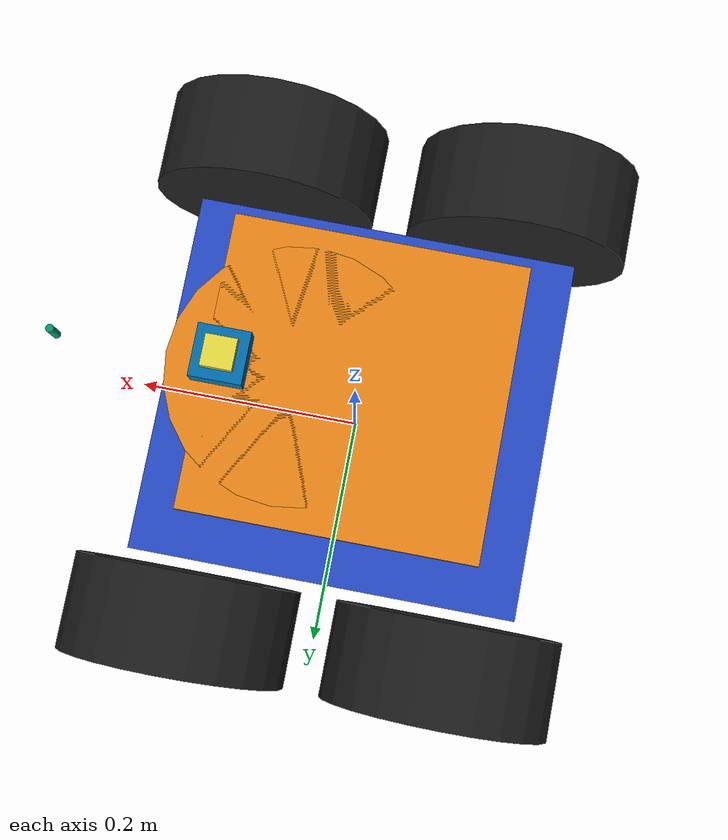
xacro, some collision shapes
<?xml version="1.0"?>

<robot name="wifibot"
       xmlns:sensor="http://playerstage.sourceforge.net/gazebo/xmlschema/#sensor"
       xmlns:controller="http://playerstage.sourceforge.net/gazebo/xmlschema/#controller"
       xmlns:interface="http://playerstage.sourceforge.net/gazebo/xmlschema/#interface"
       xmlns:xacro="http://ros.org/wiki/xacro">
  <include filename="$(find tutorial_gazebo)/urdf/wifibot_body.urdf.xacro" />
  <include filename="$(find tutorial_gazebo)/urdf/gazebo_wifibot_kinect.urdf.xacro" />

  <property name="M_PI" value="3.14159"/>
  <property name="SCALE" value="0.0254"/>

  <!-- Body of qiubot -->
  <wifibot_body/>

</robot>

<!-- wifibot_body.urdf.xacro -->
<robot name="wifibot_model" xmlns:xacro="http://ros.org/wiki/xacro">
  <property name="M_PI" value="3.14159"/>
  <property name="R_wheel" value="0.095"/>
  <property name="W_wheel" value="0.08"/>

  <!-- Macro for wifibot body. -->
  <!-- Import Rviz colors -->
  <xacro:include filename="$(find tutorial_gazebo)/urdf/materials.xacro" />
  <property name="base_z" value="0.08" />

  <xacro:macro name="wifibot_body">

  <link name="base_footprint">
    <visual>
      <origin xyz="0 0 0" rpy="0 0 0" />
      <geometry>
        <box size="0.001 0.001 0.001" />
      </geometry>
    </visual>
    <collision>
      <origin xyz="0 0 0.1" rpy="0 0 0" />
      <geometry>
       <box size="0.001 0.001 0.001" />
      </geometry>
    </collision>
  </link>

  <link name="base_link">
    <inertial>
      <mass value="2" />
      <origin xyz="0 0 0" />
      <inertia ixx="0.01" ixy="0.0" ixz="0.0"
        iyy="0.01" iyz="0.0" izz="0.5" />
    </inertial>
    <visual>
      <origin xyz="0 0 0" rpy="0 0 0" />
      <geometry>
			<box size="0.32 0.3 0.06" />
      </geometry>
    </visual>
    <collision>
      <origin xyz="0 0 0" rpy="0 0 0" />
      <geometry>
	<box size="0.0004 0.004 0.0004" />
      </geometry>
    </collision>
  </link>

  <joint name="base_footprint_joint" type="fixed">
    <origin xyz="0 0 ${R_wheel}" rpy="0 0 0" />
    <parent link="base_footprint"/>
    <child link="base_link" />
  </joint>

<link name="center_box">
    <inertial>
      <mass value="0.01" />
      <origin xyz="0 0 0" />
      <inertia ixx="0.01" ixy="0.0" ixz="0.0"
        iyy="0.01" iyz="0.0" izz="0.5" />
    </inertial>
    <visual>
      <origin xyz="0 0 0" rpy="0 0 0" />
      <geometry>
			<box size="0.2 0.2 0.09" />
      </geometry>
    <material name="orange" />
    </visual>
    <collision>
      <origin xyz="0 0 0" rpy="0 0 0" />
      <geometry>
		<box size="0.0004 0.004 0.0004" />
      </geometry>
    </collision>
  </link>

<joint name="center_box_joint" type="fixed">
    <origin xyz="0 0 0.07" rpy="0 0 0" />
    <parent link="base_link"/>
    <child link="center_box" />
  </joint>

 <link name="left_f_wheel_link">
    <inertial>
      <origin xyz="0 0 0"/>
      <mass value="0.01" />
      <inertia ixx="0.001" ixy="0.0" ixz="0.0"
        iyy="0.001" iyz="0.0" izz="0.001" />
    </inertial>
    <visual>
      <origin xyz="0 0 0" rpy="0 1.5707 1.5707" />
      <geometry>
        <cylinder radius="${R_wheel}" length = "${W_wheel}"/>
      </geometry>
         <material name="black" />
    </visual>
    <collision>
      <origin xyz="0 0 0" rpy="0 1.5707 1.5707" />
      <geometry>
        <cylinder radius="${R_wheel}" length = "0.023"/>
      </geometry>
    </collision>
  </link>

  <joint name="left_f_wheel_joint" type="fixed">
    <origin xyz="0.11 0.2 0.0" rpy="0 0 0"/>
    <parent link="base_link"/>
    <child link="left_f_wheel_link"/>
    <axis xyz="0 1 0"/>
  </joint>

  <link name="right_f_wheel_link">
    <inertial>
      <origin xyz="0 0 0"/>
      <mass value="0.01" />
      <inertia ixx="0.001" ixy="0.0" ixz="0.0"
        iyy="0.001" iyz="0.0" izz="0.001" />
    </inertial>
    <visual>
      <origin xyz="0 0 0" rpy="0 1.5707 1.5707" />
      <geometry>
        <cylinder radius="${R_wheel}" length = "${W_wheel}"/>
      </geometry>
         <material name="black" />
    </visual>

    <collision>
      <origin xyz="0 0 0" rpy="0 1.5707 1.5707" />
      <geometry>
        <cylinder radius="${R_wheel}" length = "0.023"/>
      </geometry>
    </collision>
  </link>

  <joint name="right_f_wheel_joint" type="fixed">
    <origin xyz="0.11 -0.2 0.0" rpy="0 0 0"/>
    <parent link="base_link"/>
    <child link="right_f_wheel_link"/>
  </joint>

<link name="left_r_wheel_link">
    <inertial>
      <origin xyz="0 0 0"/>
      <mass value="0.01" />
      <inertia ixx="0.001" ixy="0.0" ixz="0.0"
        iyy="0.001" iyz="0.0" izz="0.001" />
    </inertial>
    <visual>
      <origin xyz="0 0 0" rpy="0 1.5707 1.5707" />
      <geometry>
        <cylinder radius="${R_wheel}" length = "${W_wheel}"/>
      </geometry>
         <material name="black" />
    </visual>

    <collision>
      <origin xyz="0 0 0" rpy="0 1.5707 1.5707" />
      <geometry>
        <cylinder radius="${R_wheel}" length = "0.023"/>
      </geometry>
    </collision>
  </link>

  <joint name="left_r_wheel_joint" type="fixed">
    <origin xyz="-0.11 0.2 0.0" rpy="0 0 0"/>
    <parent link="base_link"/>
    <child link="left_r_wheel_link"/>
    <axis xyz="0 1 0"/>
  </joint>

  <link name="right_r_wheel_link">
    <inertial>
      <origin xyz="0 0 0"/>
      <mass value="0.01" />
      <inertia ixx="0.001" ixy="0.0" ixz="0.0"
        iyy="0.001" iyz="0.0" izz="0.001" />
    </inertial>
    <visual>
      <origin xyz="0 0 0" rpy="0 1.5707 1.5707" />
      <geometry>
        <cylinder radius="${R_wheel}" length = "${W_wheel}"/>
      </geometry>
         <material name="black" />
    </visual>
    <collision>
      <origin xyz="0 0 0" rpy="0 1.5707 1.5707" />
      <geometry>
        <cylinder radius="${R_wheel}" length = "0.023"/>
      </geometry>
    </collision>
  </link>

  <joint name="right_r_wheel_joint" type="fixed">
    <origin xyz="-0.11 -0.2 0.0" rpy="0 0 0"/>
    <parent link="base_link"/>
    <child link="right_r_wheel_link"/>
  </joint>

<link name="plate">
    <inertial>
      <origin xyz="0 0 0"/>
      <mass value="0.1" />
      <inertia ixx="0.001" ixy="0.0" ixz="0.0"
        iyy="0.001" iyz="0.0" izz="0.001" />
    </inertial>
    <visual>
      <origin xyz="0 0 0.0" rpy="0 0 0"/>
      <geometry>
        <box size="0.23 0.23 0.012" />
      </geometry>
      <material name="orange" />
    </visual>

    <collision>
      <origin xyz="0 0 0.5" rpy="0 0 0" />
      <geometry>
        <sphere radius="0.035" />
      </geometry>
    </collision>
  </link>

  <joint name="plate_joint" type="fixed">
    <origin xyz="0.0 0 0.12" rpy="0 0 0"/>
    <parent link="base_link"/>
    <child link="plate"/>
  </joint>

<link name="round_plate">
    <inertial>
      <origin xyz="0 0 0"/>
      <mass value="0.1" />
      <inertia ixx="0.001" ixy="0.0" ixz="0.0"
        iyy="0.001" iyz="0.0" izz="0.001" />
    </inertial>
    <visual>
      <origin xyz="0 0 0.0" rpy="0 0 0"/>
      <geometry>
        <cylinder radius="0.1" length="0.012" />
      </geometry>
         <material name="orange" />
    </visual>

    <collision>
      <origin xyz="0 0 0.5" rpy="0 0 0" />
      <geometry>
        <cylinder radius="0.03" length="0.012" />
      </geometry>
    </collision>
  </link>

  <joint name="round_plate_joint" type="fixed">
    <origin xyz="0.045 0 0.12" rpy="0 0 0"/>
    <parent link="base_link"/>
    <child link="round_plate"/>
  </joint>

  <link name="camera_pod_link">
    <inertial>
      <origin xyz="0 0 0"/>
      <mass value="0.1" />
      <inertia ixx="0.001" ixy="0.0" ixz="0.0"
        iyy="0.001" iyz="0.0" izz="0.001" />
    </inertial>
     <visual>
      <origin xyz="0 0 0.0" rpy="0 0 0"/>
      <geometry>
        <sphere radius="0.00028" />
      </geometry>
    </visual>

    <collision>
      <origin xyz="0 0 0.5" rpy="0 0 0" />
      <geometry>
        <sphere radius="0.035" />
      </geometry>
    </collision>

  </link>

  <joint name="camera_pod_joint" type="fixed">
    <origin xyz="0.095 0.065 0.075" rpy="0 0 0"/>
    <parent link="plate"/>
    <child link="camera_pod_link"/>
  </joint>

 <link name="camera_visu">
    <inertial>
      <origin xyz="0.1350 -0.06 -0.03"/>
      <mass value="0.1" />
      <inertia ixx="0.001" ixy="0.0" ixz="0.0"
        iyy="0.001" iyz="0.0" izz="0.001" />
    </inertial>
    <visual>
      <!--origin xyz="0 0 0.0" rpy="0 0 0"/-->
      <origin xyz="0.1350 -0.06 -0.03" rpy="0 0 ${M_PI/2}"/>
      <geometry>
			<mesh filename="package://tutorial_gazebo/meshes/camera.dae" scale="0.015 0.015 0.015"/>
      </geometry>
    </visual>
    <collision>
      <origin xyz="0.1350 -0.06 0.0" rpy="0 0 0" />
      <geometry>
        <cylinder radius="0.003" length = "0.023"/>
      </geometry>
    </collision>
  </link>

  <joint name="camera_visu_joint" type="fixed">
    <origin xyz="0.09 0.065 0.03" rpy="0 0 0"/>
    <parent link="plate"/>
    <child link="camera_visu"/>
  </joint>

   <link name="laser_visu">
    <inertial>
      <origin xyz="0 0 0"/>
      <mass value="0.01" />
      <inertia ixx="0.001" ixy="0.0" ixz="0.0"
        iyy="0.001" iyz="0.0" izz="0.001" />
    </inertial>
    <visual>
      <origin xyz="0 0 0" rpy="0 0 0" />
      <geometry>
        <mesh filename="package://tutorial_gazebo/meshes/hokuyo_utm_30lx.dae" scale="0.757 0.757 0.757"/>
      </geometry>
    </visual>
    <collision>
      <origin xyz="0 0 0" rpy="0 0 0" />
     <geometry>
        <box size="0.024 0.024 0.024" />
      </geometry>
    </collision>
  </link>

  <joint name="laser_visu_joint" type="fixed">
    <origin xyz="0.1 0 0.035" rpy="0 0 0" />
    <parent link="plate" />
    <child link="laser_visu" />
  </joint>

   <link name="laser">
    <visual>
      <geometry>
        <box size="0.04 0.04 0.02" />
      </geometry>
    </visual>
    <inertial>
      <mass value="0.001" />
      <origin xyz="0 0 0" />
      <inertia ixx="0.0001" ixy="0.0" ixz="0.0"
        iyy="0.0001" iyz="0.0"
        izz="0.0001" />
    </inertial>
  </link>

  <joint name="laser_joint" type="fixed">
    <origin xyz="0.1 0 0.03" rpy="0 0 0" />
    <parent link="plate" />
    <child link="laser" />
  </joint>

<!--Painting color for all the joints-->
  <gazebo reference="right_f_wheel_link">
   <material>Gazebo/Black</material>
  </gazebo>
  <gazebo reference="right_r_wheel_link">
   <material>Gazebo/Black</material>
  </gazebo>
  <gazebo reference="left_f_wheel_link">
   <material>Gazebo/Black</material>
  </gazebo>
  <gazebo reference="left_r_wheel_link">
   <material>Gazebo/Black</material>
  </gazebo>
  <gazebo reference="base_footprint">
   <material>Gazebo/Black</material>
  </gazebo>
  <gazebo reference="base_link">
   <material>Gazebo/Blue</material>
  </gazebo>
  <gazebo reference="center_box">
   <material>Gazebo/Orange</material>
  </gazebo>
  <gazebo reference="plate">
   <material>Gazebo/Gold</material>
  </gazebo>
  <gazebo reference="round_plate">
   <material>Gazebo/Gold</material>
  </gazebo>

  </xacro:macro>
</robot>
